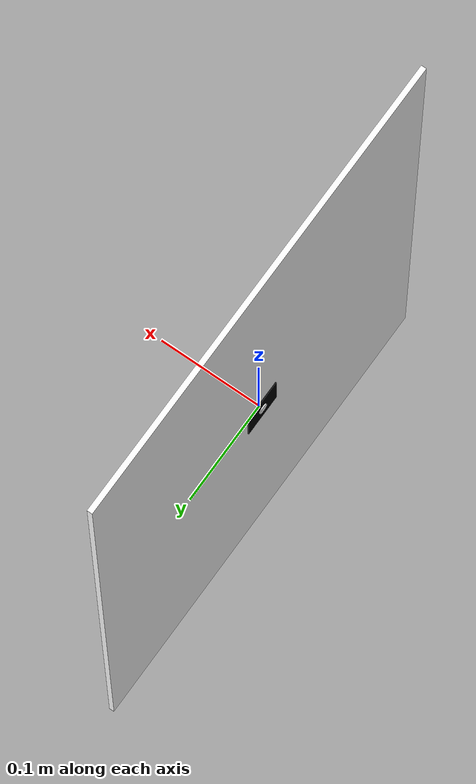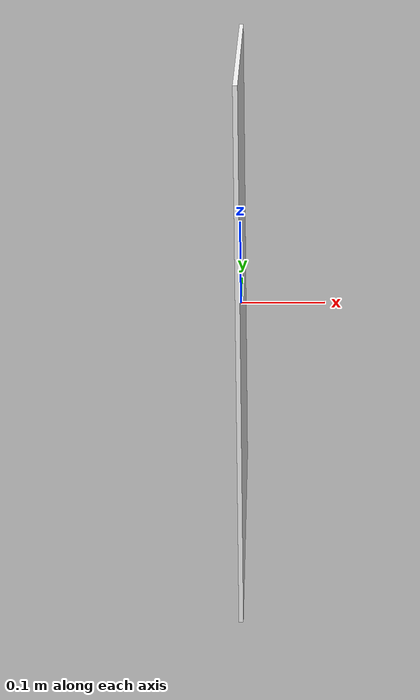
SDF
<?xml version="1.0"?>
<sdf version="1.6">
<model name="exp_board">
  <static>true</static>

  <link name="link">

    <collision name="collision">
      <geometry>
        <box>
          <size>0.005 0.45 0.6</size>
        </box>
      </geometry>
    </collision>

    <visual name="visual">
      <geometry>
        <box>
          <size>0.005 0.45 0.6</size>
        </box>
      </geometry>
      <material>
        <ambient>1.0 1.0 1.0 1</ambient>
        <diffuse>1.0 1.0 1.0 1</diffuse>
      </material>
    </visual>

    <visual name="center_patch_visual">
      <pose>-0.003 0 0 0 0 0</pose>
      <geometry>
        <box>
          <size>0.001 0.04 0.04</size>
        </box>
      </geometry>
      <material>
        <ambient>0 0 0 1</ambient>
        <diffuse>0 0 0 1</diffuse>
      </material>
    </visual>

    <visual name="center_hole_visual">
      <pose>-0.004 0 0 0 1.57 0</pose>
      <geometry>
        <cylinder>
          <radius>0.005</radius>
	  <length>0.001</length>
        </cylinder>
      </geometry>
      <material>
        <ambient>1 1 1 1</ambient>
        <diffuse>1 1 1 1</diffuse>
      </material>
    </visual>

  </link>
</model>
</sdf>
